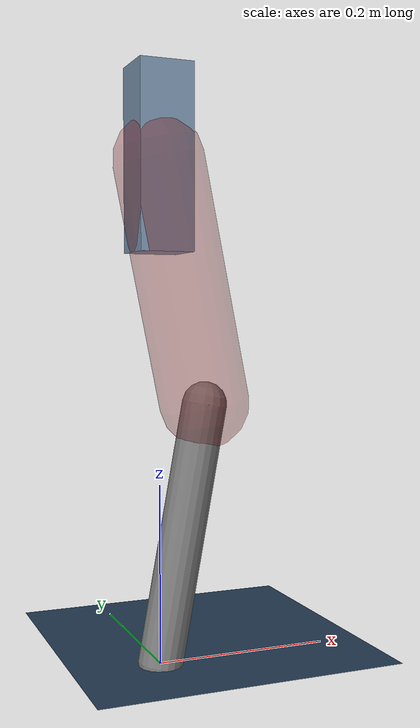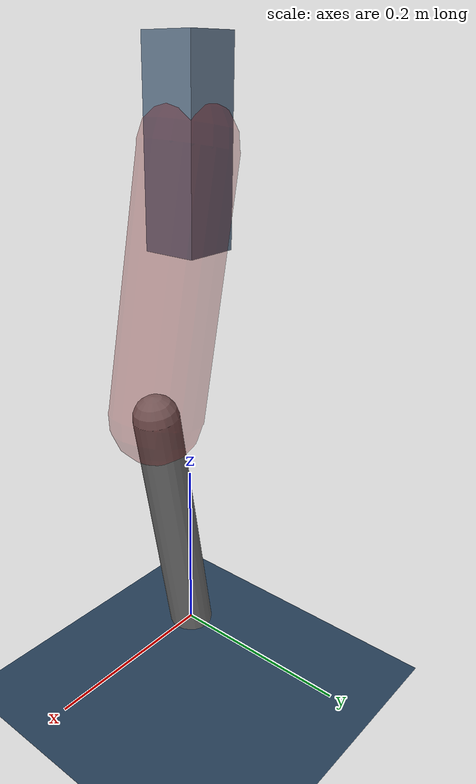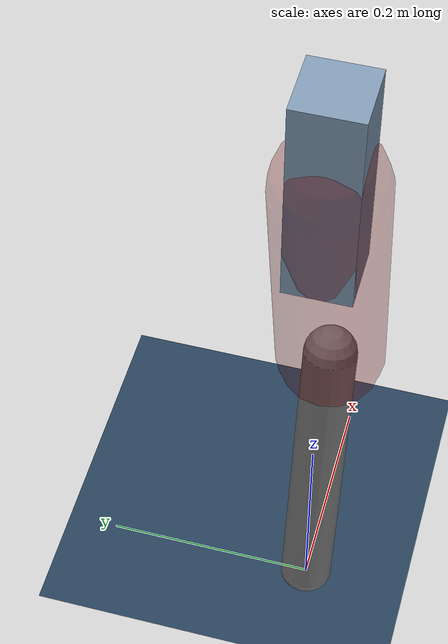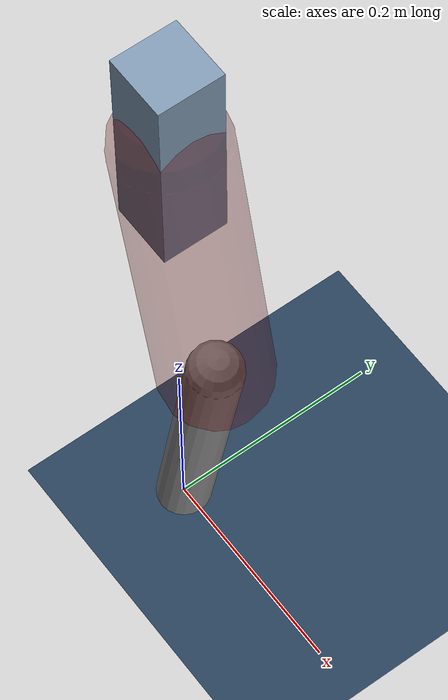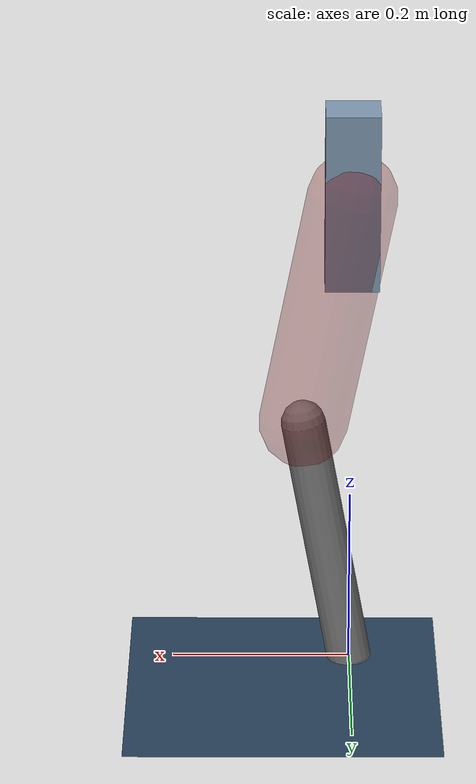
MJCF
<mujoco model="Hopper2D">
	<compiler inertiafromgeom="true" angle="radian" />
	<option timestep="0.001" integrator="implicit" cone="elliptic" solver="Newton" tolerance="1e-10" />

	<default>
		<geom contype="1" conaffinity="1" condim="3" friction="2 0.005 0.0001" solref="0.005 1" />
		<joint limited="true" damping="0.1" />
	</default>

	<asset>
		<texture name="skybox" type="skybox" builtin="gradient" rgb1=".4 .6 .8" rgb2="0 0 0" width="800" height="800" />
		<texture name="grid" type="2d" builtin="checker" rgb1=".1 .2 .3" rgb2=".2 .3 .4" width="300" height="300" mark="edge" markrgb=".2 .3 .4" />
		<material name="ground" texture="grid" texrepeat="1 1" texuniform="true" reflectance="0.1" />
		<material name="leg" rgba="0.5 0.6 0.7 1" />
	</asset>

	<worldbody>

		<geom name="floor" type="plane" size="5 5 0.25" material="ground" />

		<light directional="false" diffuse="0.8 0.8 0.8" specular="0.3 0.3 0.3" pos="0 0 2" dir="0 0 -1" />
		<light mode="targetbodycom" target="base" directional="false" diffuse="0.8 0.8 0.8" specular="0.3 0.3 0.3" pos="0 0 2" dir="0 0 -1" />

		<camera name="fixed" pos="0 -2 1" xyaxes="1 0 0 0 0 1" />
		<camera name="tracking" mode="trackcom" pos="0 -3 1" />

		<body name="root" pos="0 0 0.5540520888878708">
			<joint name="slide_x" type="slide" axis="1 0 0" range="-100 100" />
			<joint name="slide_z" type="slide" axis="0 0 1" range="0 10" />

			<body name="base" pos="0 0 0">
				<geom name="torso" type="box" size="0.03 0.03 0.1" mass="1.946" material="leg" />

				<body name="link1" pos="0 0 0" euler="0 1.3746398360554386 0">
					<joint type="hinge" axis="0 -1 0" pos="0 0 0" name="hinge1" limited="true" range="-3.14 3.14" stiffness="0" damping="0.1" />
					<geom name="thigh" type="capsule" fromto="0 0 0 0.27105425940968636 0 0" size="0.05" rgba="0.5 0 0 0.3" mass="0.9114410744651845" />

					<body name="link2" pos="0.27105425940968636 0 0" euler="0 0.3774522050402402 0">
						<joint type="hinge" axis="0 -1 0" pos="0 0 0" name="hinge2" limited="true" range="-3.14 3.14" stiffness="0" damping="0.1" />
						<geom name="shank" type="capsule" fromto="0 0 0 0.2929978294781844 0 0" size="0.025" mass="0.4776982635825476" />

					</body>
				</body>
			</body>
		</body>
	</worldbody>

	<actuator>
		<motor name="torque1" joint="hinge1" ctrlrange="-24.304250058337132 24.304250058337132" ctrllimited="true" gear="1" />
		<motor name="torque2" joint="hinge2" ctrlrange="-57.435700642117666 57.435700642117666" ctrllimited="true" gear="1" />
	</actuator>
</mujoco>
